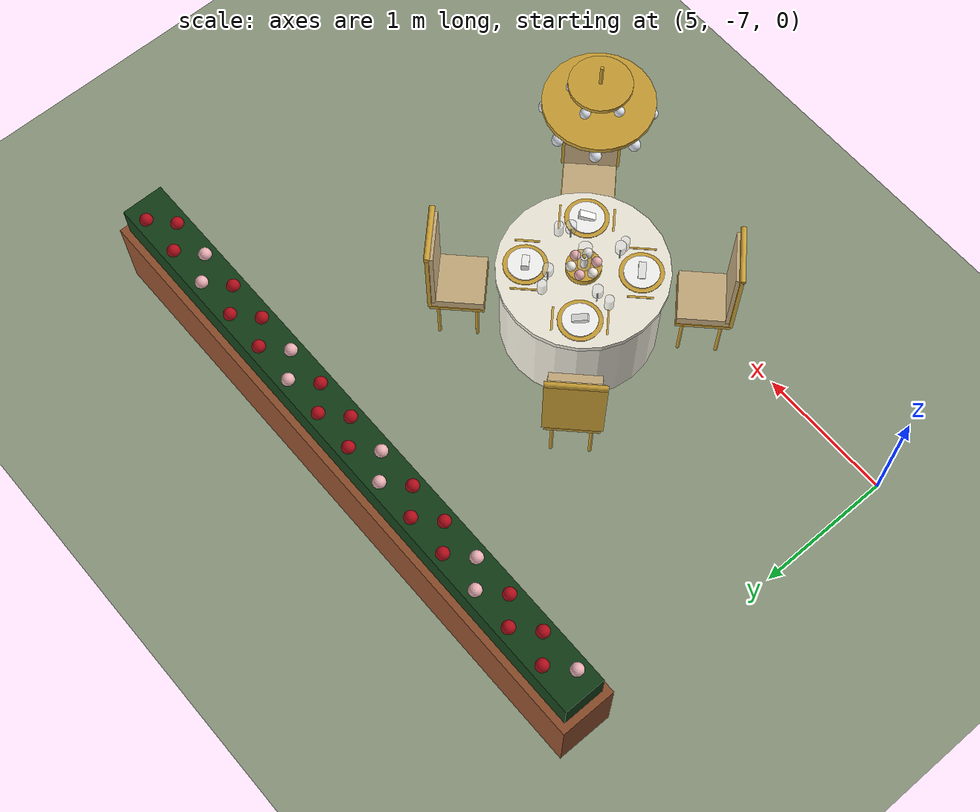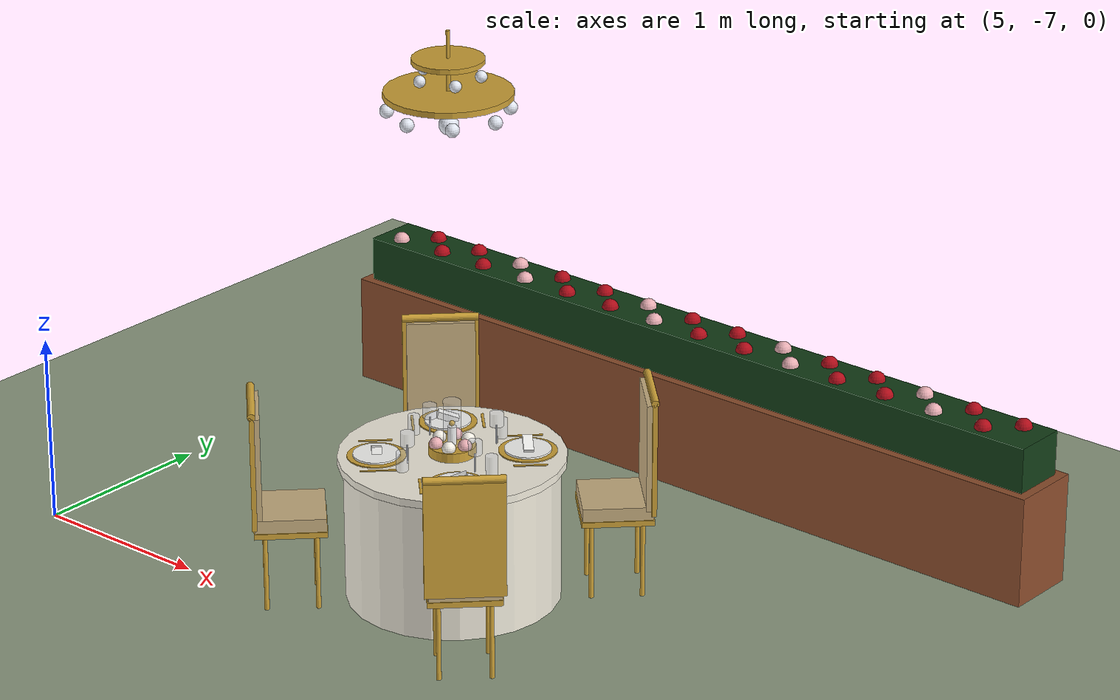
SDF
<sdf version="1.9">
 <world name="dar_tunibot">
  <model name="ground_plane">
   <static>true</static>
   <link name="link">
    <collision name="collision">
     <geometry><plane><normal>0 0 1</normal><size>60 60</size></plane></geometry>
    </collision>
    <visual name="visual">
     <geometry><plane><normal>0 0 1</normal><size>60 60</size></plane></geometry>
     <material><ambient>0.55 0.6 0.5 1</ambient><diffuse>0.55 0.6 0.5 1</diffuse></material>
    </visual>
   </link>
  </model>
  <model name="table_8">
   <static>true</static>
   <pose>7.2 -6.3 0 0 0 0</pose>
   <link name="link">
    <visual name="cloth_v">
     <pose>0.000 0.000 0.370 0.0000 0.0000 0.0000</pose>
     <geometry><cylinder><radius>0.550</radius><length>0.740</length></cylinder></geometry>
     <material>
      <ambient>0.95 0.93 0.87 1</ambient>
      <diffuse>0.95 0.93 0.87 1</diffuse>
      <specular>0.1 0.1 0.1 1</specular>
     </material>
    </visual>
    <collision name="cloth_c">
     <pose>0.000 0.000 0.370 0.0000 0.0000 0.0000</pose>
     <geometry><cylinder><radius>0.550</radius><length>0.740</length></cylinder></geometry>
    </collision>
    <visual name="drape_v">
     <pose>0.000 0.000 0.750 0.0000 0.0000 0.0000</pose>
     <geometry><cylinder><radius>0.580</radius><length>0.040</length></cylinder></geometry>
     <material>
      <ambient>0.95 0.93 0.87 1</ambient>
      <diffuse>0.95 0.93 0.87 1</diffuse>
      <specular>0.1 0.1 0.1 1</specular>
     </material>
    </visual>
    <visual name="bowl_v">
     <pose>0.000 0.000 0.795 0.0000 0.0000 0.0000</pose>
     <geometry><cylinder><radius>0.120</radius><length>0.050</length></cylinder></geometry>
     <material>
      <ambient>0.8 0.63 0.21 1</ambient>
      <diffuse>0.8 0.63 0.21 1</diffuse>
      <specular>0.1 0.1 0.1 1</specular>
     </material>
    </visual>
    <visual name="bowl_foot_v">
     <pose>0.000 0.000 0.775 0.0000 0.0000 0.0000</pose>
     <geometry><cylinder><radius>0.060</radius><length>0.020</length></cylinder></geometry>
     <material>
      <ambient>0.8 0.63 0.21 1</ambient>
      <diffuse>0.8 0.63 0.21 1</diffuse>
      <specular>0.1 0.1 0.1 1</specular>
     </material>
    </visual>
    <visual name="candle_v">
     <pose>0.000 0.000 0.870 0.0000 0.0000 0.0000</pose>
     <geometry><cylinder><radius>0.022</radius><length>0.100</length></cylinder></geometry>
     <material>
      <ambient>0.98 0.98 0.97 1</ambient>
      <diffuse>0.98 0.98 0.97 1</diffuse>
      <specular>0.1 0.1 0.1 1</specular>
     </material>
    </visual>
    <visual name="flame_v">
     <pose>0.000 0.000 0.935 0.0000 0.0000 0.0000</pose>
     <geometry><sphere><radius>0.014</radius></sphere></geometry>
     <material>
      <ambient>0.8 0.63 0.21 1</ambient>
      <diffuse>0.8 0.63 0.21 1</diffuse>
      <specular>0.1 0.1 0.1 1</specular>
      <emissive>1.0 0.6 0.2 1</emissive>
     </material>
    </visual>
    <visual name="hurricane_v">
     <pose>0.000 0.000 0.940 0.0000 0.0000 0.0000</pose>
     <geometry><cylinder><radius>0.045</radius><length>0.240</length></cylinder></geometry>
     <transparency>0.75</transparency>
     <material>
      <ambient>0.9 0.92 0.96 1</ambient>
      <diffuse>0.9 0.92 0.96 1</diffuse>
      <specular>0.1 0.1 0.1 1</specular>
     </material>
    </visual>
    <visual name="rose0_v">
     <pose>0.085 0.000 0.835 0.0000 0.0000 0.0000</pose>
     <geometry><sphere><radius>0.035</radius></sphere></geometry>
     <material>
      <ambient>0.93 0.7 0.72 1</ambient>
      <diffuse>0.93 0.7 0.72 1</diffuse>
      <specular>0.1 0.1 0.1 1</specular>
     </material>
    </visual>
    <visual name="rose1_v">
     <pose>0.043 0.074 0.835 0.0000 0.0000 0.0000</pose>
     <geometry><sphere><radius>0.035</radius></sphere></geometry>
     <material>
      <ambient>0.97 0.95 0.91 1</ambient>
      <diffuse>0.97 0.95 0.91 1</diffuse>
      <specular>0.1 0.1 0.1 1</specular>
     </material>
    </visual>
    <visual name="rose2_v">
     <pose>-0.042 0.074 0.835 0.0000 0.0000 0.0000</pose>
     <geometry><sphere><radius>0.035</radius></sphere></geometry>
     <material>
      <ambient>0.93 0.7 0.72 1</ambient>
      <diffuse>0.93 0.7 0.72 1</diffuse>
      <specular>0.1 0.1 0.1 1</specular>
     </material>
    </visual>
    <visual name="rose3_v">
     <pose>-0.085 0.000 0.835 0.0000 0.0000 0.0000</pose>
     <geometry><sphere><radius>0.035</radius></sphere></geometry>
     <material>
      <ambient>0.97 0.95 0.91 1</ambient>
      <diffuse>0.97 0.95 0.91 1</diffuse>
      <specular>0.1 0.1 0.1 1</specular>
     </material>
    </visual>
    <visual name="rose4_v">
     <pose>-0.043 -0.074 0.835 0.0000 0.0000 0.0000</pose>
     <geometry><sphere><radius>0.035</radius></sphere></geometry>
     <material>
      <ambient>0.93 0.7 0.72 1</ambient>
      <diffuse>0.93 0.7 0.72 1</diffuse>
      <specular>0.1 0.1 0.1 1</specular>
     </material>
    </visual>
    <visual name="rose5_v">
     <pose>0.043 -0.074 0.835 0.0000 0.0000 0.0000</pose>
     <geometry><sphere><radius>0.035</radius></sphere></geometry>
     <material>
      <ambient>0.97 0.95 0.91 1</ambient>
      <diffuse>0.97 0.95 0.91 1</diffuse>
      <specular>0.1 0.1 0.1 1</specular>
     </material>
    </visual>
    <collision name="seat0_c">
     <pose>0.580 0.580 0.225 0.0000 0.0000 0.0000</pose>
     <geometry><box><size>0.400 0.400 0.450</size></box></geometry>
    </collision>
    <visual name="seat_frame0_v">
     <pose>0.580 0.580 0.430 0.0000 0.0000 0.7854</pose>
     <geometry><box><size>0.370 0.370 0.030</size></box></geometry>
     <material>
      <ambient>0.8 0.63 0.21 1</ambient>
      <diffuse>0.8 0.63 0.21 1</diffuse>
      <specular>0.1 0.1 0.1 1</specular>
     </material>
    </visual>
    <visual name="cushion0_v">
     <pose>0.580 0.580 0.480 0.0000 0.0000 0.7854</pose>
     <geometry><box><size>0.360 0.360 0.070</size></box></geometry>
     <material>
      <ambient>0.78 0.68 0.5 1</ambient>
      <diffuse>0.78 0.68 0.5 1</diffuse>
      <specular>0.1 0.1 0.1 1</specular>
     </material>
    </visual>
    <visual name="back_frame0_v">
     <pose>0.707 0.707 0.780 0.0000 0.0000 0.7854</pose>
     <geometry><box><size>0.025 0.400 0.620</size></box></geometry>
     <material>
      <ambient>0.8 0.63 0.21 1</ambient>
      <diffuse>0.8 0.63 0.21 1</diffuse>
      <specular>0.1 0.1 0.1 1</specular>
     </material>
    </visual>
    <visual name="back0_v">
     <pose>0.697 0.697 0.780 0.0000 0.0000 0.7854</pose>
     <geometry><box><size>0.050 0.360 0.580</size></box></geometry>
     <material>
      <ambient>0.78 0.68 0.5 1</ambient>
      <diffuse>0.78 0.68 0.5 1</diffuse>
      <specular>0.1 0.1 0.1 1</specular>
     </material>
    </visual>
    <visual name="back_top0_v">
     <pose>0.707 0.707 1.090 1.5708 0.0000 0.7854</pose>
     <geometry><cylinder><radius>0.020</radius><length>0.400</length></cylinder></geometry>
     <material>
      <ambient>0.8 0.63 0.21 1</ambient>
      <diffuse>0.8 0.63 0.21 1</diffuse>
      <specular>0.1 0.1 0.1 1</specular>
     </material>
    </visual>
    <visual name="leg0_0_v">
     <pose>0.580 0.396 0.210 0.0000 0.0000 0.7854</pose>
     <geometry><cylinder><radius>0.012</radius><length>0.420</length></cylinder></geometry>
     <material>
      <ambient>0.8 0.63 0.21 1</ambient>
      <diffuse>0.8 0.63 0.21 1</diffuse>
      <specular>0.1 0.1 0.1 1</specular>
     </material>
    </visual>
    <visual name="leg0_1_v">
     <pose>0.396 0.580 0.210 0.0000 0.0000 0.7854</pose>
     <geometry><cylinder><radius>0.012</radius><length>0.420</length></cylinder></geometry>
     <material>
      <ambient>0.8 0.63 0.21 1</ambient>
      <diffuse>0.8 0.63 0.21 1</diffuse>
      <specular>0.1 0.1 0.1 1</specular>
     </material>
    </visual>
    <visual name="leg0_2_v">
     <pose>0.764 0.580 0.210 0.0000 0.0000 0.7854</pose>
     <geometry><cylinder><radius>0.012</radius><length>0.420</length></cylinder></geometry>
     <material>
      <ambient>0.8 0.63 0.21 1</ambient>
      <diffuse>0.8 0.63 0.21 1</diffuse>
      <specular>0.1 0.1 0.1 1</specular>
     </material>
    </visual>
    <visual name="leg0_3_v">
     <pose>0.580 0.764 0.210 0.0000 0.0000 0.7854</pose>
     <geometry><cylinder><radius>0.012</radius><length>0.420</length></cylinder></geometry>
     <material>
      <ambient>0.8 0.63 0.21 1</ambient>
      <diffuse>0.8 0.63 0.21 1</diffuse>
      <specular>0.1 0.1 0.1 1</specular>
     </material>
    </visual>
    <visual name="charger0_v">
     <pose>0.269 0.269 0.773 0.0000 0.0000 0.7854</pose>
     <geometry><cylinder><radius>0.150</radius><length>0.006</length></cylinder></geometry>
     <material>
      <ambient>0.8 0.63 0.21 1</ambient>
      <diffuse>0.8 0.63 0.21 1</diffuse>
      <specular>0.1 0.1 0.1 1</specular>
     </material>
    </visual>
    <visual name="plate0_v">
     <pose>0.269 0.269 0.781 0.0000 0.0000 0.7854</pose>
     <geometry><cylinder><radius>0.120</radius><length>0.010</length></cylinder></geometry>
     <material>
      <ambient>0.98 0.98 0.97 1</ambient>
      <diffuse>0.98 0.98 0.97 1</diffuse>
      <specular>0.1 0.1 0.1 1</specular>
     </material>
    </visual>
    <visual name="napkin0_v">
     <pose>0.269 0.269 0.803 0.3500 0.0000 0.7854</pose>
     <geometry><box><size>0.050 0.110 0.035</size></box></geometry>
     <material>
      <ambient>0.98 0.98 0.97 1</ambient>
      <diffuse>0.98 0.98 0.97 1</diffuse>
      <specular>0.1 0.1 0.1 1</specular>
     </material>
    </visual>
    <visual name="fork0_v">
     <pose>0.396 0.141 0.772 0.0000 0.0000 0.7854</pose>
     <geometry><box><size>0.170 0.014 0.004</size></box></geometry>
     <material>
      <ambient>0.8 0.63 0.21 1</ambient>
      <diffuse>0.8 0.63 0.21 1</diffuse>
      <specular>0.1 0.1 0.1 1</specular>
     </material>
    </visual>
    <visual name="knife0_v">
     <pose>0.141 0.396 0.772 0.0000 0.0000 0.7854</pose>
     <geometry><box><size>0.180 0.012 0.004</size></box></geometry>
     <material>
      <ambient>0.8 0.63 0.21 1</ambient>
      <diffuse>0.8 0.63 0.21 1</diffuse>
      <specular>0.1 0.1 0.1 1</specular>
     </material>
    </visual>
    <visual name="wine_stem0_v">
     <pose>0.092 0.233 0.820 0.0000 0.0000 0.7854</pose>
     <geometry><cylinder><radius>0.004</radius><length>0.100</length></cylinder></geometry>
     <material>
      <ambient>0.9 0.92 0.96 1</ambient>
      <diffuse>0.9 0.92 0.96 1</diffuse>
      <specular>0.1 0.1 0.1 1</specular>
     </material>
    </visual>
    <visual name="wine_bowl0_v">
     <pose>0.092 0.233 0.905 0.0000 0.0000 0.7854</pose>
     <geometry><cylinder><radius>0.035</radius><length>0.070</length></cylinder></geometry>
     <transparency>0.6</transparency>
     <material>
      <ambient>0.9 0.92 0.96 1</ambient>
      <diffuse>0.9 0.92 0.96 1</diffuse>
      <specular>0.1 0.1 0.1 1</specular>
     </material>
    </visual>
    <visual name="water0_v">
     <pose>0.057 0.311 0.820 0.0000 0.0000 0.7854</pose>
     <geometry><cylinder><radius>0.030</radius><length>0.100</length></cylinder></geometry>
     <transparency>0.6</transparency>
     <material>
      <ambient>0.9 0.92 0.96 1</ambient>
      <diffuse>0.9 0.92 0.96 1</diffuse>
      <specular>0.1 0.1 0.1 1</specular>
     </material>
    </visual>
    <collision name="seat1_c">
     <pose>-0.580 0.580 0.225 0.0000 0.0000 0.0000</pose>
     <geometry><box><size>0.400 0.400 0.450</size></box></geometry>
    </collision>
    <visual name="seat_frame1_v">
     <pose>-0.580 0.580 0.430 0.0000 0.0000 2.3562</pose>
     <geometry><box><size>0.370 0.370 0.030</size></box></geometry>
     <material>
      <ambient>0.8 0.63 0.21 1</ambient>
      <diffuse>0.8 0.63 0.21 1</diffuse>
      <specular>0.1 0.1 0.1 1</specular>
     </material>
    </visual>
    <visual name="cushion1_v">
     <pose>-0.580 0.580 0.480 0.0000 0.0000 2.3562</pose>
     <geometry><box><size>0.360 0.360 0.070</size></box></geometry>
     <material>
      <ambient>0.78 0.68 0.5 1</ambient>
      <diffuse>0.78 0.68 0.5 1</diffuse>
      <specular>0.1 0.1 0.1 1</specular>
     </material>
    </visual>
    <visual name="back_frame1_v">
     <pose>-0.707 0.707 0.780 0.0000 0.0000 2.3562</pose>
     <geometry><box><size>0.025 0.400 0.620</size></box></geometry>
     <material>
      <ambient>0.8 0.63 0.21 1</ambient>
      <diffuse>0.8 0.63 0.21 1</diffuse>
      <specular>0.1 0.1 0.1 1</specular>
     </material>
    </visual>
    <visual name="back1_v">
     <pose>-0.697 0.697 0.780 0.0000 0.0000 2.3562</pose>
     <geometry><box><size>0.050 0.360 0.580</size></box></geometry>
     <material>
      <ambient>0.78 0.68 0.5 1</ambient>
      <diffuse>0.78 0.68 0.5 1</diffuse>
      <specular>0.1 0.1 0.1 1</specular>
     </material>
    </visual>
    <visual name="back_top1_v">
     <pose>-0.707 0.707 1.090 1.5708 0.0000 2.3562</pose>
     <geometry><cylinder><radius>0.020</radius><length>0.400</length></cylinder></geometry>
     <material>
      <ambient>0.8 0.63 0.21 1</ambient>
      <diffuse>0.8 0.63 0.21 1</diffuse>
      <specular>0.1 0.1 0.1 1</specular>
     </material>
    </visual>
    <visual name="leg1_0_v">
     <pose>-0.396 0.580 0.210 0.0000 0.0000 2.3562</pose>
     <geometry><cylinder><radius>0.012</radius><length>0.420</length></cylinder></geometry>
     <material>
      <ambient>0.8 0.63 0.21 1</ambient>
      <diffuse>0.8 0.63 0.21 1</diffuse>
      <specular>0.1 0.1 0.1 1</specular>
     </material>
    </visual>
    <visual name="leg1_1_v">
     <pose>-0.580 0.396 0.210 0.0000 0.0000 2.3562</pose>
     <geometry><cylinder><radius>0.012</radius><length>0.420</length></cylinder></geometry>
     <material>
      <ambient>0.8 0.63 0.21 1</ambient>
      <diffuse>0.8 0.63 0.21 1</diffuse>
      <specular>0.1 0.1 0.1 1</specular>
     </material>
    </visual>
    <visual name="leg1_2_v">
     <pose>-0.580 0.764 0.210 0.0000 0.0000 2.3562</pose>
     <geometry><cylinder><radius>0.012</radius><length>0.420</length></cylinder></geometry>
     <material>
      <ambient>0.8 0.63 0.21 1</ambient>
      <diffuse>0.8 0.63 0.21 1</diffuse>
      <specular>0.1 0.1 0.1 1</specular>
     </material>
    </visual>
    <visual name="leg1_3_v">
     <pose>-0.764 0.580 0.210 0.0000 0.0000 2.3562</pose>
     <geometry><cylinder><radius>0.012</radius><length>0.420</length></cylinder></geometry>
     <material>
      <ambient>0.8 0.63 0.21 1</ambient>
      <diffuse>0.8 0.63 0.21 1</diffuse>
      <specular>0.1 0.1 0.1 1</specular>
     </material>
    </visual>
    <visual name="charger1_v">
     <pose>-0.269 0.269 0.773 0.0000 0.0000 2.3562</pose>
     <geometry><cylinder><radius>0.150</radius><length>0.006</length></cylinder></geometry>
     <material>
      <ambient>0.8 0.63 0.21 1</ambient>
      <diffuse>0.8 0.63 0.21 1</diffuse>
      <specular>0.1 0.1 0.1 1</specular>
     </material>
    </visual>
    <visual name="plate1_v">
     <pose>-0.269 0.269 0.781 0.0000 0.0000 2.3562</pose>
     <geometry><cylinder><radius>0.120</radius><length>0.010</length></cylinder></geometry>
     <material>
      <ambient>0.98 0.98 0.97 1</ambient>
      <diffuse>0.98 0.98 0.97 1</diffuse>
      <specular>0.1 0.1 0.1 1</specular>
     </material>
    </visual>
    <visual name="napkin1_v">
     <pose>-0.269 0.269 0.803 0.3500 0.0000 2.3562</pose>
     <geometry><box><size>0.050 0.110 0.035</size></box></geometry>
     <material>
      <ambient>0.98 0.98 0.97 1</ambient>
      <diffuse>0.98 0.98 0.97 1</diffuse>
      <specular>0.1 0.1 0.1 1</specular>
     </material>
    </visual>
    <visual name="fork1_v">
     <pose>-0.141 0.396 0.772 0.0000 0.0000 2.3562</pose>
     <geometry><box><size>0.170 0.014 0.004</size></box></geometry>
     <material>
      <ambient>0.8 0.63 0.21 1</ambient>
      <diffuse>0.8 0.63 0.21 1</diffuse>
      <specular>0.1 0.1 0.1 1</specular>
     </material>
    </visual>
    <visual name="knife1_v">
     <pose>-0.396 0.141 0.772 0.0000 0.0000 2.3562</pose>
     <geometry><box><size>0.180 0.012 0.004</size></box></geometry>
     <material>
      <ambient>0.8 0.63 0.21 1</ambient>
      <diffuse>0.8 0.63 0.21 1</diffuse>
      <specular>0.1 0.1 0.1 1</specular>
     </material>
    </visual>
    <visual name="wine_stem1_v">
     <pose>-0.233 0.092 0.820 0.0000 0.0000 2.3562</pose>
     <geometry><cylinder><radius>0.004</radius><length>0.100</length></cylinder></geometry>
     <material>
      <ambient>0.9 0.92 0.96 1</ambient>
      <diffuse>0.9 0.92 0.96 1</diffuse>
      <specular>0.1 0.1 0.1 1</specular>
     </material>
    </visual>
    <visual name="wine_bowl1_v">
     <pose>-0.233 0.092 0.905 0.0000 0.0000 2.3562</pose>
     <geometry><cylinder><radius>0.035</radius><length>0.070</length></cylinder></geometry>
     <transparency>0.6</transparency>
     <material>
      <ambient>0.9 0.92 0.96 1</ambient>
      <diffuse>0.9 0.92 0.96 1</diffuse>
      <specular>0.1 0.1 0.1 1</specular>
     </material>
    </visual>
    <visual name="water1_v">
     <pose>-0.311 0.057 0.820 0.0000 0.0000 2.3562</pose>
     <geometry><cylinder><radius>0.030</radius><length>0.100</length></cylinder></geometry>
     <transparency>0.6</transparency>
     <material>
      <ambient>0.9 0.92 0.96 1</ambient>
      <diffuse>0.9 0.92 0.96 1</diffuse>
      <specular>0.1 0.1 0.1 1</specular>
     </material>
    </visual>
    <collision name="seat2_c">
     <pose>-0.580 -0.580 0.225 0.0000 0.0000 0.0000</pose>
     <geometry><box><size>0.400 0.400 0.450</size></box></geometry>
    </collision>
    <visual name="seat_frame2_v">
     <pose>-0.580 -0.580 0.430 0.0000 0.0000 3.9270</pose>
     <geometry><box><size>0.370 0.370 0.030</size></box></geometry>
     <material>
      <ambient>0.8 0.63 0.21 1</ambient>
      <diffuse>0.8 0.63 0.21 1</diffuse>
      <specular>0.1 0.1 0.1 1</specular>
     </material>
    </visual>
    <visual name="cushion2_v">
     <pose>-0.580 -0.580 0.480 0.0000 0.0000 3.9270</pose>
     <geometry><box><size>0.360 0.360 0.070</size></box></geometry>
     <material>
      <ambient>0.78 0.68 0.5 1</ambient>
      <diffuse>0.78 0.68 0.5 1</diffuse>
      <specular>0.1 0.1 0.1 1</specular>
     </material>
    </visual>
    <visual name="back_frame2_v">
     <pose>-0.707 -0.707 0.780 0.0000 0.0000 3.9270</pose>
     <geometry><box><size>0.025 0.400 0.620</size></box></geometry>
     <material>
      <ambient>0.8 0.63 0.21 1</ambient>
      <diffuse>0.8 0.63 0.21 1</diffuse>
      <specular>0.1 0.1 0.1 1</specular>
     </material>
    </visual>
    <visual name="back2_v">
     <pose>-0.697 -0.697 0.780 0.0000 0.0000 3.9270</pose>
     <geometry><box><size>0.050 0.360 0.580</size></box></geometry>
     <material>
      <ambient>0.78 0.68 0.5 1</ambient>
      <diffuse>0.78 0.68 0.5 1</diffuse>
      <specular>0.1 0.1 0.1 1</specular>
     </material>
    </visual>
    <visual name="back_top2_v">
     <pose>-0.707 -0.707 1.090 1.5708 0.0000 3.9270</pose>
     <geometry><cylinder><radius>0.020</radius><length>0.400</length></cylinder></geometry>
     <material>
      <ambient>0.8 0.63 0.21 1</ambient>
      <diffuse>0.8 0.63 0.21 1</diffuse>
      <specular>0.1 0.1 0.1 1</specular>
     </material>
    </visual>
    <visual name="leg2_0_v">
     <pose>-0.580 -0.396 0.210 0.0000 0.0000 3.9270</pose>
     <geometry><cylinder><radius>0.012</radius><length>0.420</length></cylinder></geometry>
     <material>
      <ambient>0.8 0.63 0.21 1</ambient>
      <diffuse>0.8 0.63 0.21 1</diffuse>
      <specular>0.1 0.1 0.1 1</specular>
     </material>
    </visual>
    <visual name="leg2_1_v">
     <pose>-0.396 -0.580 0.210 0.0000 0.0000 3.9270</pose>
     <geometry><cylinder><radius>0.012</radius><length>0.420</length></cylinder></geometry>
     <material>
      <ambient>0.8 0.63 0.21 1</ambient>
      <diffuse>0.8 0.63 0.21 1</diffuse>
      <specular>0.1 0.1 0.1 1</specular>
     </material>
    </visual>
    <visual name="leg2_2_v">
     <pose>-0.764 -0.580 0.210 0.0000 0.0000 3.9270</pose>
     <geometry><cylinder><radius>0.012</radius><length>0.420</length></cylinder></geometry>
     <material>
      <ambient>0.8 0.63 0.21 1</ambient>
      <diffuse>0.8 0.63 0.21 1</diffuse>
      <specular>0.1 0.1 0.1 1</specular>
     </material>
    </visual>
    <visual name="leg2_3_v">
     <pose>-0.580 -0.764 0.210 0.0000 0.0000 3.9270</pose>
     <geometry><cylinder><radius>0.012</radius><length>0.420</length></cylinder></geometry>
     <material>
      <ambient>0.8 0.63 0.21 1</ambient>
      <diffuse>0.8 0.63 0.21 1</diffuse>
      <specular>0.1 0.1 0.1 1</specular>
     </material>
    </visual>
    <visual name="charger2_v">
     <pose>-0.269 -0.269 0.773 0.0000 0.0000 3.9270</pose>
     <geometry><cylinder><radius>0.150</radius><length>0.006</length></cylinder></geometry>
     <material>
      <ambient>0.8 0.63 0.21 1</ambient>
      <diffuse>0.8 0.63 0.21 1</diffuse>
      <specular>0.1 0.1 0.1 1</specular>
     </material>
    </visual>
    <visual name="plate2_v">
     <pose>-0.269 -0.269 0.781 0.0000 0.0000 3.9270</pose>
     <geometry><cylinder><radius>0.120</radius><length>0.010</length></cylinder></geometry>
     <material>
      <ambient>0.98 0.98 0.97 1</ambient>
      <diffuse>0.98 0.98 0.97 1</diffuse>
      <specular>0.1 0.1 0.1 1</specular>
     </material>
    </visual>
    <visual name="napkin2_v">
     <pose>-0.269 -0.269 0.803 0.3500 0.0000 3.9270</pose>
     <geometry><box><size>0.050 0.110 0.035</size></box></geometry>
     <material>
      <ambient>0.98 0.98 0.97 1</ambient>
      <diffuse>0.98 0.98 0.97 1</diffuse>
      <specular>0.1 0.1 0.1 1</specular>
     </material>
    </visual>
    <visual name="fork2_v">
     <pose>-0.396 -0.141 0.772 0.0000 0.0000 3.9270</pose>
     <geometry><box><size>0.170 0.014 0.004</size></box></geometry>
     <material>
      <ambient>0.8 0.63 0.21 1</ambient>
      <diffuse>0.8 0.63 0.21 1</diffuse>
      <specular>0.1 0.1 0.1 1</specular>
     </material>
    </visual>
    <visual name="knife2_v">
     <pose>-0.141 -0.396 0.772 0.0000 0.0000 3.9270</pose>
     <geometry><box><size>0.180 0.012 0.004</size></box></geometry>
     <material>
      <ambient>0.8 0.63 0.21 1</ambient>
      <diffuse>0.8 0.63 0.21 1</diffuse>
      <specular>0.1 0.1 0.1 1</specular>
     </material>
    </visual>
    <visual name="wine_stem2_v">
     <pose>-0.092 -0.233 0.820 0.0000 0.0000 3.9270</pose>
     <geometry><cylinder><radius>0.004</radius><length>0.100</length></cylinder></geometry>
     <material>
      <ambient>0.9 0.92 0.96 1</ambient>
      <diffuse>0.9 0.92 0.96 1</diffuse>
      <specular>0.1 0.1 0.1 1</specular>
     </material>
    </visual>
    <visual name="wine_bowl2_v">
     <pose>-0.092 -0.233 0.905 0.0000 0.0000 3.9270</pose>
     <geometry><cylinder><radius>0.035</radius><length>0.070</length></cylinder></geometry>
     <transparency>0.6</transparency>
     <material>
      <ambient>0.9 0.92 0.96 1</ambient>
      <diffuse>0.9 0.92 0.96 1</diffuse>
      <specular>0.1 0.1 0.1 1</specular>
     </material>
    </visual>
    <visual name="water2_v">
     <pose>-0.057 -0.311 0.820 0.0000 0.0000 3.9270</pose>
     <geometry><cylinder><radius>0.030</radius><length>0.100</length></cylinder></geometry>
     <transparency>0.6</transparency>
     <material>
      <ambient>0.9 0.92 0.96 1</ambient>
      <diffuse>0.9 0.92 0.96 1</diffuse>
      <specular>0.1 0.1 0.1 1</specular>
     </material>
    </visual>
    <collision name="seat3_c">
     <pose>0.580 -0.580 0.225 0.0000 0.0000 0.0000</pose>
     <geometry><box><size>0.400 0.400 0.450</size></box></geometry>
    </collision>
    <visual name="seat_frame3_v">
     <pose>0.580 -0.580 0.430 0.0000 0.0000 5.4978</pose>
     <geometry><box><size>0.370 0.370 0.030</size></box></geometry>
     <material>
      <ambient>0.8 0.63 0.21 1</ambient>
      <diffuse>0.8 0.63 0.21 1</diffuse>
      <specular>0.1 0.1 0.1 1</specular>
     </material>
    </visual>
    <visual name="cushion3_v">
     <pose>0.580 -0.580 0.480 0.0000 0.0000 5.4978</pose>
     <geometry><box><size>0.360 0.360 0.070</size></box></geometry>
     <material>
      <ambient>0.78 0.68 0.5 1</ambient>
      <diffuse>0.78 0.68 0.5 1</diffuse>
      <specular>0.1 0.1 0.1 1</specular>
     </material>
    </visual>
    <visual name="back_frame3_v">
     <pose>0.707 -0.707 0.780 0.0000 0.0000 5.4978</pose>
     <geometry><box><size>0.025 0.400 0.620</size></box></geometry>
     <material>
      <ambient>0.8 0.63 0.21 1</ambient>
      <diffuse>0.8 0.63 0.21 1</diffuse>
      <specular>0.1 0.1 0.1 1</specular>
     </material>
    </visual>
    <visual name="back3_v">
     <pose>0.697 -0.697 0.780 0.0000 0.0000 5.4978</pose>
     <geometry><box><size>0.050 0.360 0.580</size></box></geometry>
     <material>
      <ambient>0.78 0.68 0.5 1</ambient>
      <diffuse>0.78 0.68 0.5 1</diffuse>
      <specular>0.1 0.1 0.1 1</specular>
     </material>
    </visual>
    <visual name="back_top3_v">
     <pose>0.707 -0.707 1.090 1.5708 0.0000 5.4978</pose>
     <geometry><cylinder><radius>0.020</radius><length>0.400</length></cylinder></geometry>
     <material>
      <ambient>0.8 0.63 0.21 1</ambient>
      <diffuse>0.8 0.63 0.21 1</diffuse>
      <specular>0.1 0.1 0.1 1</specular>
     </material>
    </visual>
    <visual name="leg3_0_v">
     <pose>0.396 -0.580 0.210 0.0000 0.0000 5.4978</pose>
     <geometry><cylinder><radius>0.012</radius><length>0.420</length></cylinder></geometry>
     <material>
      <ambient>0.8 0.63 0.21 1</ambient>
      <diffuse>0.8 0.63 0.21 1</diffuse>
      <specular>0.1 0.1 0.1 1</specular>
     </material>
    </visual>
    <visual name="leg3_1_v">
     <pose>0.580 -0.396 0.210 0.0000 0.0000 5.4978</pose>
     <geometry><cylinder><radius>0.012</radius><length>0.420</length></cylinder></geometry>
     <material>
      <ambient>0.8 0.63 0.21 1</ambient>
      <diffuse>0.8 0.63 0.21 1</diffuse>
      <specular>0.1 0.1 0.1 1</specular>
     </material>
    </visual>
    <visual name="leg3_2_v">
     <pose>0.580 -0.764 0.210 0.0000 0.0000 5.4978</pose>
     <geometry><cylinder><radius>0.012</radius><length>0.420</length></cylinder></geometry>
     <material>
      <ambient>0.8 0.63 0.21 1</ambient>
      <diffuse>0.8 0.63 0.21 1</diffuse>
      <specular>0.1 0.1 0.1 1</specular>
     </material>
    </visual>
    <visual name="leg3_3_v">
     <pose>0.764 -0.580 0.210 0.0000 0.0000 5.4978</pose>
     <geometry><cylinder><radius>0.012</radius><length>0.420</length></cylinder></geometry>
     <material>
      <ambient>0.8 0.63 0.21 1</ambient>
      <diffuse>0.8 0.63 0.21 1</diffuse>
      <specular>0.1 0.1 0.1 1</specular>
     </material>
    </visual>
    <visual name="charger3_v">
     <pose>0.269 -0.269 0.773 0.0000 0.0000 5.4978</pose>
     <geometry><cylinder><radius>0.150</radius><length>0.006</length></cylinder></geometry>
     <material>
      <ambient>0.8 0.63 0.21 1</ambient>
      <diffuse>0.8 0.63 0.21 1</diffuse>
      <specular>0.1 0.1 0.1 1</specular>
     </material>
    </visual>
    <visual name="plate3_v">
     <pose>0.269 -0.269 0.781 0.0000 0.0000 5.4978</pose>
     <geometry><cylinder><radius>0.120</radius><length>0.010</length></cylinder></geometry>
     <material>
      <ambient>0.98 0.98 0.97 1</ambient>
      <diffuse>0.98 0.98 0.97 1</diffuse>
      <specular>0.1 0.1 0.1 1</specular>
     </material>
    </visual>
    <visual name="napkin3_v">
     <pose>0.269 -0.269 0.803 0.3500 0.0000 5.4978</pose>
     <geometry><box><size>0.050 0.110 0.035</size></box></geometry>
     <material>
      <ambient>0.98 0.98 0.97 1</ambient>
      <diffuse>0.98 0.98 0.97 1</diffuse>
      <specular>0.1 0.1 0.1 1</specular>
     </material>
    </visual>
    <visual name="fork3_v">
     <pose>0.141 -0.396 0.772 0.0000 0.0000 5.4978</pose>
     <geometry><box><size>0.170 0.014 0.004</size></box></geometry>
     <material>
      <ambient>0.8 0.63 0.21 1</ambient>
      <diffuse>0.8 0.63 0.21 1</diffuse>
      <specular>0.1 0.1 0.1 1</specular>
     </material>
    </visual>
    <visual name="knife3_v">
     <pose>0.396 -0.141 0.772 0.0000 0.0000 5.4978</pose>
     <geometry><box><size>0.180 0.012 0.004</size></box></geometry>
     <material>
      <ambient>0.8 0.63 0.21 1</ambient>
      <diffuse>0.8 0.63 0.21 1</diffuse>
      <specular>0.1 0.1 0.1 1</specular>
     </material>
    </visual>
    <visual name="wine_stem3_v">
     <pose>0.233 -0.092 0.820 0.0000 0.0000 5.4978</pose>
     <geometry><cylinder><radius>0.004</radius><length>0.100</length></cylinder></geometry>
     <material>
      <ambient>0.9 0.92 0.96 1</ambient>
      <diffuse>0.9 0.92 0.96 1</diffuse>
      <specular>0.1 0.1 0.1 1</specular>
     </material>
    </visual>
    <visual name="wine_bowl3_v">
     <pose>0.233 -0.092 0.905 0.0000 0.0000 5.4978</pose>
     <geometry><cylinder><radius>0.035</radius><length>0.070</length></cylinder></geometry>
     <transparency>0.6</transparency>
     <material>
      <ambient>0.9 0.92 0.96 1</ambient>
      <diffuse>0.9 0.92 0.96 1</diffuse>
      <specular>0.1 0.1 0.1 1</specular>
     </material>
    </visual>
    <visual name="water3_v">
     <pose>0.311 -0.057 0.820 0.0000 0.0000 5.4978</pose>
     <geometry><cylinder><radius>0.030</radius><length>0.100</length></cylinder></geometry>
     <transparency>0.6</transparency>
     <material>
      <ambient>0.9 0.92 0.96 1</ambient>
      <diffuse>0.9 0.92 0.96 1</diffuse>
      <specular>0.1 0.1 0.1 1</specular>
     </material>
    </visual>
    <visual name="chand_rod_v">
     <pose>0.000 0.000 2.750 0.0000 0.0000 0.0000</pose>
     <geometry><cylinder><radius>0.010</radius><length>0.500</length></cylinder></geometry>
     <material>
      <ambient>0.8 0.63 0.21 1</ambient>
      <diffuse>0.8 0.63 0.21 1</diffuse>
      <specular>0.1 0.1 0.1 1</specular>
     </material>
    </visual>
    <visual name="chand_ring_v">
     <pose>0.000 0.000 2.680 0.0000 0.0000 0.0000</pose>
     <geometry><cylinder><radius>0.320</radius><length>0.030</length></cylinder></geometry>
     <material>
      <ambient>0.8 0.63 0.21 1</ambient>
      <diffuse>0.8 0.63 0.21 1</diffuse>
      <specular>0.1 0.1 0.1 1</specular>
     </material>
    </visual>
    <visual name="chand_ring_top_v">
     <pose>0.000 0.000 2.850 0.0000 0.0000 0.0000</pose>
     <geometry><cylinder><radius>0.180</radius><length>0.025</length></cylinder></geometry>
     <material>
      <ambient>0.8 0.63 0.21 1</ambient>
      <diffuse>0.8 0.63 0.21 1</diffuse>
      <specular>0.1 0.1 0.1 1</specular>
     </material>
    </visual>
    <visual name="chand_drop_v">
     <pose>0.000 0.000 2.520 0.0000 0.0000 0.0000</pose>
     <geometry><sphere><radius>0.050</radius></sphere></geometry>
     <material>
      <ambient>0.9 0.92 0.96 1</ambient>
      <diffuse>0.9 0.92 0.96 1</diffuse>
      <specular>0.1 0.1 0.1 1</specular>
      <emissive>0.55 0.52 0.45 1</emissive>
     </material>
    </visual>
    <visual name="crystal0_0_v">
     <pose>0.300 0.000 2.600 0.0000 0.0000 0.0000</pose>
     <geometry><sphere><radius>0.035</radius></sphere></geometry>
     <material>
      <ambient>0.9 0.92 0.96 1</ambient>
      <diffuse>0.9 0.92 0.96 1</diffuse>
      <specular>0.1 0.1 0.1 1</specular>
      <emissive>0.55 0.52 0.45 1</emissive>
     </material>
    </visual>
    <visual name="crystal0_1_v">
     <pose>0.212 0.212 2.600 0.0000 0.0000 0.0000</pose>
     <geometry><sphere><radius>0.035</radius></sphere></geometry>
     <material>
      <ambient>0.9 0.92 0.96 1</ambient>
      <diffuse>0.9 0.92 0.96 1</diffuse>
      <specular>0.1 0.1 0.1 1</specular>
      <emissive>0.55 0.52 0.45 1</emissive>
     </material>
    </visual>
    <visual name="crystal0_2_v">
     <pose>0.000 0.300 2.600 0.0000 0.0000 0.0000</pose>
     <geometry><sphere><radius>0.035</radius></sphere></geometry>
     <material>
      <ambient>0.9 0.92 0.96 1</ambient>
      <diffuse>0.9 0.92 0.96 1</diffuse>
      <specular>0.1 0.1 0.1 1</specular>
      <emissive>0.55 0.52 0.45 1</emissive>
     </material>
    </visual>
    <visual name="crystal0_3_v">
     <pose>-0.212 0.212 2.600 0.0000 0.0000 0.0000</pose>
     <geometry><sphere><radius>0.035</radius></sphere></geometry>
     <material>
      <ambient>0.9 0.92 0.96 1</ambient>
      <diffuse>0.9 0.92 0.96 1</diffuse>
      <specular>0.1 0.1 0.1 1</specular>
      <emissive>0.55 0.52 0.45 1</emissive>
     </material>
    </visual>
    <visual name="crystal0_4_v">
     <pose>-0.300 0.000 2.600 0.0000 0.0000 0.0000</pose>
     <geometry><sphere><radius>0.035</radius></sphere></geometry>
     <material>
      <ambient>0.9 0.92 0.96 1</ambient>
      <diffuse>0.9 0.92 0.96 1</diffuse>
      <specular>0.1 0.1 0.1 1</specular>
      <emissive>0.55 0.52 0.45 1</emissive>
     </material>
    </visual>
    <visual name="crystal0_5_v">
     <pose>-0.212 -0.212 2.600 0.0000 0.0000 0.0000</pose>
     <geometry><sphere><radius>0.035</radius></sphere></geometry>
     <material>
      <ambient>0.9 0.92 0.96 1</ambient>
      <diffuse>0.9 0.92 0.96 1</diffuse>
      <specular>0.1 0.1 0.1 1</specular>
      <emissive>0.55 0.52 0.45 1</emissive>
     </material>
    </visual>
    <visual name="crystal0_6_v">
     <pose>-0.000 -0.300 2.600 0.0000 0.0000 0.0000</pose>
     <geometry><sphere><radius>0.035</radius></sphere></geometry>
     <material>
      <ambient>0.9 0.92 0.96 1</ambient>
      <diffuse>0.9 0.92 0.96 1</diffuse>
      <specular>0.1 0.1 0.1 1</specular>
      <emissive>0.55 0.52 0.45 1</emissive>
     </material>
    </visual>
    <visual name="crystal0_7_v">
     <pose>0.212 -0.212 2.600 0.0000 0.0000 0.0000</pose>
     <geometry><sphere><radius>0.035</radius></sphere></geometry>
     <material>
      <ambient>0.9 0.92 0.96 1</ambient>
      <diffuse>0.9 0.92 0.96 1</diffuse>
      <specular>0.1 0.1 0.1 1</specular>
      <emissive>0.55 0.52 0.45 1</emissive>
     </material>
    </visual>
    <visual name="crystal1_0_v">
     <pose>0.129 0.094 2.770 0.0000 0.0000 0.0000</pose>
     <geometry><sphere><radius>0.030</radius></sphere></geometry>
     <material>
      <ambient>0.9 0.92 0.96 1</ambient>
      <diffuse>0.9 0.92 0.96 1</diffuse>
      <specular>0.1 0.1 0.1 1</specular>
      <emissive>0.55 0.52 0.45 1</emissive>
     </material>
    </visual>
    <visual name="crystal1_1_v">
     <pose>-0.049 0.152 2.770 0.0000 0.0000 0.0000</pose>
     <geometry><sphere><radius>0.030</radius></sphere></geometry>
     <material>
      <ambient>0.9 0.92 0.96 1</ambient>
      <diffuse>0.9 0.92 0.96 1</diffuse>
      <specular>0.1 0.1 0.1 1</specular>
      <emissive>0.55 0.52 0.45 1</emissive>
     </material>
    </visual>
    <visual name="crystal1_2_v">
     <pose>-0.160 0.000 2.770 0.0000 0.0000 0.0000</pose>
     <geometry><sphere><radius>0.030</radius></sphere></geometry>
     <material>
      <ambient>0.9 0.92 0.96 1</ambient>
      <diffuse>0.9 0.92 0.96 1</diffuse>
      <specular>0.1 0.1 0.1 1</specular>
      <emissive>0.55 0.52 0.45 1</emissive>
     </material>
    </visual>
    <visual name="crystal1_3_v">
     <pose>-0.049 -0.152 2.770 0.0000 0.0000 0.0000</pose>
     <geometry><sphere><radius>0.030</radius></sphere></geometry>
     <material>
      <ambient>0.9 0.92 0.96 1</ambient>
      <diffuse>0.9 0.92 0.96 1</diffuse>
      <specular>0.1 0.1 0.1 1</specular>
      <emissive>0.55 0.52 0.45 1</emissive>
     </material>
    </visual>
    <visual name="crystal1_4_v">
     <pose>0.129 -0.094 2.770 0.0000 0.0000 0.0000</pose>
     <geometry><sphere><radius>0.030</radius></sphere></geometry>
     <material>
      <ambient>0.9 0.92 0.96 1</ambient>
      <diffuse>0.9 0.92 0.96 1</diffuse>
      <specular>0.1 0.1 0.1 1</specular>
      <emissive>0.55 0.52 0.45 1</emissive>
     </material>
    </visual>
   </link>
  </model>
  <model name="planter_east">
   <static>true</static>
   <pose>7.25 -4.4 0 0 0 0</pose>
   <link name="link">
    <visual name="body_v">
     <pose>0.000 0.000 0.300 0.0000 0.0000 0.0000</pose>
     <geometry><box><size>4.500 0.400 0.600</size></box></geometry>
     <material>
      <ambient>0.55 0.3 0.17 1</ambient>
      <diffuse>0.55 0.3 0.17 1</diffuse>
      <specular>0.1 0.1 0.1 1</specular>
     </material>
    </visual>
    <collision name="body_c">
     <pose>0.000 0.000 0.300 0.0000 0.0000 0.0000</pose>
     <geometry><box><size>4.500 0.400 0.600</size></box></geometry>
    </collision>
    <visual name="hedge_v">
     <pose>0.000 0.000 0.720 0.0000 0.0000 0.0000</pose>
     <geometry><box><size>4.400 0.300 0.250</size></box></geometry>
     <material>
      <ambient>0.07 0.24 0.09 1</ambient>
      <diffuse>0.07 0.24 0.09 1</diffuse>
      <specular>0.1 0.1 0.1 1</specular>
     </material>
    </visual>
    <visual name="bloom0_0_v">
     <pose>-2.050 -0.070 0.850 0.0000 0.0000 0.0000</pose>
     <geometry><sphere><radius>0.045</radius></sphere></geometry>
     <material>
      <ambient>0.93 0.7 0.72 1</ambient>
      <diffuse>0.93 0.7 0.72 1</diffuse>
      <specular>0.1 0.1 0.1 1</specular>
     </material>
    </visual>
    <visual name="bloom0_1_v">
     <pose>-1.746 -0.070 0.850 0.0000 0.0000 0.0000</pose>
     <geometry><sphere><radius>0.045</radius></sphere></geometry>
     <material>
      <ambient>0.7 0.05 0.1 1</ambient>
      <diffuse>0.7 0.05 0.1 1</diffuse>
      <specular>0.1 0.1 0.1 1</specular>
     </material>
    </visual>
    <visual name="bloom0_2_v">
     <pose>-1.442 -0.070 0.850 0.0000 0.0000 0.0000</pose>
     <geometry><sphere><radius>0.045</radius></sphere></geometry>
     <material>
      <ambient>0.7 0.05 0.1 1</ambient>
      <diffuse>0.7 0.05 0.1 1</diffuse>
      <specular>0.1 0.1 0.1 1</specular>
     </material>
    </visual>
    <visual name="bloom0_3_v">
     <pose>-1.138 -0.070 0.850 0.0000 0.0000 0.0000</pose>
     <geometry><sphere><radius>0.045</radius></sphere></geometry>
     <material>
      <ambient>0.93 0.7 0.72 1</ambient>
      <diffuse>0.93 0.7 0.72 1</diffuse>
      <specular>0.1 0.1 0.1 1</specular>
     </material>
    </visual>
    <visual name="bloom0_4_v">
     <pose>-0.835 -0.070 0.850 0.0000 0.0000 0.0000</pose>
     <geometry><sphere><radius>0.045</radius></sphere></geometry>
     <material>
      <ambient>0.7 0.05 0.1 1</ambient>
      <diffuse>0.7 0.05 0.1 1</diffuse>
      <specular>0.1 0.1 0.1 1</specular>
     </material>
    </visual>
    <visual name="bloom0_5_v">
     <pose>-0.531 -0.070 0.850 0.0000 0.0000 0.0000</pose>
     <geometry><sphere><radius>0.045</radius></sphere></geometry>
     <material>
      <ambient>0.7 0.05 0.1 1</ambient>
      <diffuse>0.7 0.05 0.1 1</diffuse>
      <specular>0.1 0.1 0.1 1</specular>
     </material>
    </visual>
    <visual name="bloom0_6_v">
     <pose>-0.227 -0.070 0.850 0.0000 0.0000 0.0000</pose>
     <geometry><sphere><radius>0.045</radius></sphere></geometry>
     <material>
      <ambient>0.93 0.7 0.72 1</ambient>
      <diffuse>0.93 0.7 0.72 1</diffuse>
      <specular>0.1 0.1 0.1 1</specular>
     </material>
    </visual>
    <visual name="bloom0_7_v">
     <pose>0.077 -0.070 0.850 0.0000 0.0000 0.0000</pose>
     <geometry><sphere><radius>0.045</radius></sphere></geometry>
     <material>
      <ambient>0.7 0.05 0.1 1</ambient>
      <diffuse>0.7 0.05 0.1 1</diffuse>
      <specular>0.1 0.1 0.1 1</specular>
     </material>
    </visual>
    <visual name="bloom0_8_v">
     <pose>0.381 -0.070 0.850 0.0000 0.0000 0.0000</pose>
     <geometry><sphere><radius>0.045</radius></sphere></geometry>
     <material>
      <ambient>0.7 0.05 0.1 1</ambient>
      <diffuse>0.7 0.05 0.1 1</diffuse>
      <specular>0.1 0.1 0.1 1</specular>
     </material>
    </visual>
    <visual name="bloom0_9_v">
     <pose>0.685 -0.070 0.850 0.0000 0.0000 0.0000</pose>
     <geometry><sphere><radius>0.045</radius></sphere></geometry>
     <material>
      <ambient>0.93 0.7 0.72 1</ambient>
      <diffuse>0.93 0.7 0.72 1</diffuse>
      <specular>0.1 0.1 0.1 1</specular>
     </material>
    </visual>
    <visual name="bloom0_10_v">
     <pose>0.988 -0.070 0.850 0.0000 0.0000 0.0000</pose>
     <geometry><sphere><radius>0.045</radius></sphere></geometry>
     <material>
      <ambient>0.7 0.05 0.1 1</ambient>
      <diffuse>0.7 0.05 0.1 1</diffuse>
      <specular>0.1 0.1 0.1 1</specular>
     </material>
    </visual>
    <visual name="bloom0_11_v">
     <pose>1.292 -0.070 0.850 0.0000 0.0000 0.0000</pose>
     <geometry><sphere><radius>0.045</radius></sphere></geometry>
     <material>
      <ambient>0.7 0.05 0.1 1</ambient>
      <diffuse>0.7 0.05 0.1 1</diffuse>
      <specular>0.1 0.1 0.1 1</specular>
     </material>
    </visual>
    <visual name="bloom0_12_v">
     <pose>1.596 -0.070 0.850 0.0000 0.0000 0.0000</pose>
     <geometry><sphere><radius>0.045</radius></sphere></geometry>
     <material>
      <ambient>0.93 0.7 0.72 1</ambient>
      <diffuse>0.93 0.7 0.72 1</diffuse>
      <specular>0.1 0.1 0.1 1</specular>
     </material>
    </visual>
    <visual name="bloom0_13_v">
     <pose>1.900 -0.070 0.850 0.0000 0.0000 0.0000</pose>
     <geometry><sphere><radius>0.045</radius></sphere></geometry>
     <material>
      <ambient>0.7 0.05 0.1 1</ambient>
      <diffuse>0.7 0.05 0.1 1</diffuse>
      <specular>0.1 0.1 0.1 1</specular>
     </material>
    </visual>
    <visual name="bloom1_0_v">
     <pose>-1.898 0.070 0.850 0.0000 0.0000 0.0000</pose>
     <geometry><sphere><radius>0.045</radius></sphere></geometry>
     <material>
      <ambient>0.7 0.05 0.1 1</ambient>
      <diffuse>0.7 0.05 0.1 1</diffuse>
      <specular>0.1 0.1 0.1 1</specular>
     </material>
    </visual>
    <visual name="bloom1_1_v">
     <pose>-1.594 0.070 0.850 0.0000 0.0000 0.0000</pose>
     <geometry><sphere><radius>0.045</radius></sphere></geometry>
     <material>
      <ambient>0.7 0.05 0.1 1</ambient>
      <diffuse>0.7 0.05 0.1 1</diffuse>
      <specular>0.1 0.1 0.1 1</specular>
     </material>
    </visual>
    <visual name="bloom1_2_v">
     <pose>-1.290 0.070 0.850 0.0000 0.0000 0.0000</pose>
     <geometry><sphere><radius>0.045</radius></sphere></geometry>
     <material>
      <ambient>0.93 0.7 0.72 1</ambient>
      <diffuse>0.93 0.7 0.72 1</diffuse>
      <specular>0.1 0.1 0.1 1</specular>
     </material>
    </visual>
    <visual name="bloom1_3_v">
     <pose>-0.987 0.070 0.850 0.0000 0.0000 0.0000</pose>
     <geometry><sphere><radius>0.045</radius></sphere></geometry>
     <material>
      <ambient>0.7 0.05 0.1 1</ambient>
      <diffuse>0.7 0.05 0.1 1</diffuse>
      <specular>0.1 0.1 0.1 1</specular>
     </material>
    </visual>
    <visual name="bloom1_4_v">
     <pose>-0.683 0.070 0.850 0.0000 0.0000 0.0000</pose>
     <geometry><sphere><radius>0.045</radius></sphere></geometry>
     <material>
      <ambient>0.7 0.05 0.1 1</ambient>
      <diffuse>0.7 0.05 0.1 1</diffuse>
      <specular>0.1 0.1 0.1 1</specular>
     </material>
    </visual>
    <visual name="bloom1_5_v">
     <pose>-0.379 0.070 0.850 0.0000 0.0000 0.0000</pose>
     <geometry><sphere><radius>0.045</radius></sphere></geometry>
     <material>
      <ambient>0.93 0.7 0.72 1</ambient>
      <diffuse>0.93 0.7 0.72 1</diffuse>
      <specular>0.1 0.1 0.1 1</specular>
     </material>
    </visual>
    <visual name="bloom1_6_v">
     <pose>-0.075 0.070 0.850 0.0000 0.0000 0.0000</pose>
     <geometry><sphere><radius>0.045</radius></sphere></geometry>
     <material>
      <ambient>0.7 0.05 0.1 1</ambient>
      <diffuse>0.7 0.05 0.1 1</diffuse>
      <specular>0.1 0.1 0.1 1</specular>
     </material>
    </visual>
    <visual name="bloom1_7_v">
     <pose>0.229 0.070 0.850 0.0000 0.0000 0.0000</pose>
     <geometry><sphere><radius>0.045</radius></sphere></geometry>
     <material>
      <ambient>0.7 0.05 0.1 1</ambient>
      <diffuse>0.7 0.05 0.1 1</diffuse>
      <specular>0.1 0.1 0.1 1</specular>
     </material>
    </visual>
    <visual name="bloom1_8_v">
     <pose>0.533 0.070 0.850 0.0000 0.0000 0.0000</pose>
     <geometry><sphere><radius>0.045</radius></sphere></geometry>
     <material>
      <ambient>0.93 0.7 0.72 1</ambient>
      <diffuse>0.93 0.7 0.72 1</diffuse>
      <specular>0.1 0.1 0.1 1</specular>
     </material>
    </visual>
    <visual name="bloom1_9_v">
     <pose>0.837 0.070 0.850 0.0000 0.0000 0.0000</pose>
     <geometry><sphere><radius>0.045</radius></sphere></geometry>
     <material>
      <ambient>0.7 0.05 0.1 1</ambient>
      <diffuse>0.7 0.05 0.1 1</diffuse>
      <specular>0.1 0.1 0.1 1</specular>
     </material>
    </visual>
    <visual name="bloom1_10_v">
     <pose>1.140 0.070 0.850 0.0000 0.0000 0.0000</pose>
     <geometry><sphere><radius>0.045</radius></sphere></geometry>
     <material>
      <ambient>0.7 0.05 0.1 1</ambient>
      <diffuse>0.7 0.05 0.1 1</diffuse>
      <specular>0.1 0.1 0.1 1</specular>
     </material>
    </visual>
    <visual name="bloom1_11_v">
     <pose>1.444 0.070 0.850 0.0000 0.0000 0.0000</pose>
     <geometry><sphere><radius>0.045</radius></sphere></geometry>
     <material>
      <ambient>0.93 0.7 0.72 1</ambient>
      <diffuse>0.93 0.7 0.72 1</diffuse>
      <specular>0.1 0.1 0.1 1</specular>
     </material>
    </visual>
    <visual name="bloom1_12_v">
     <pose>1.748 0.070 0.850 0.0000 0.0000 0.0000</pose>
     <geometry><sphere><radius>0.045</radius></sphere></geometry>
     <material>
      <ambient>0.7 0.05 0.1 1</ambient>
      <diffuse>0.7 0.05 0.1 1</diffuse>
      <specular>0.1 0.1 0.1 1</specular>
     </material>
    </visual>
    <visual name="bloom1_13_v">
     <pose>2.052 0.070 0.850 0.0000 0.0000 0.0000</pose>
     <geometry><sphere><radius>0.045</radius></sphere></geometry>
     <material>
      <ambient>0.7 0.05 0.1 1</ambient>
      <diffuse>0.7 0.05 0.1 1</diffuse>
      <specular>0.1 0.1 0.1 1</specular>
     </material>
    </visual>
   </link>
  </model>
 </world>
</sdf>
